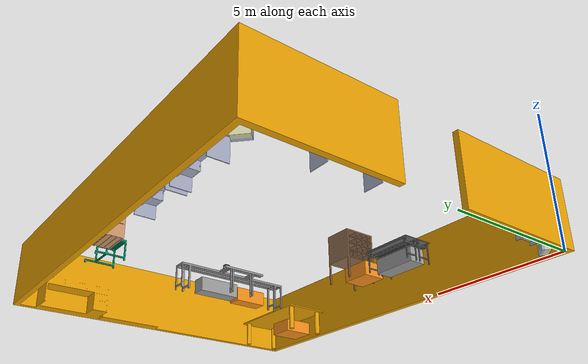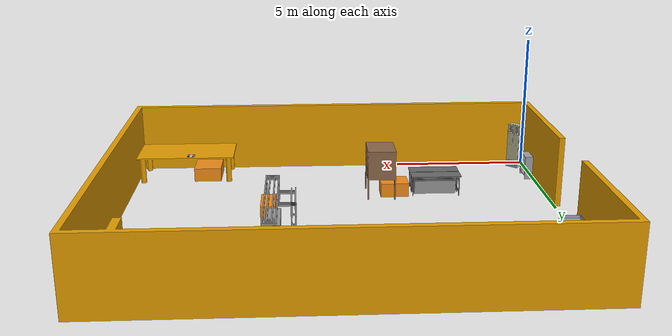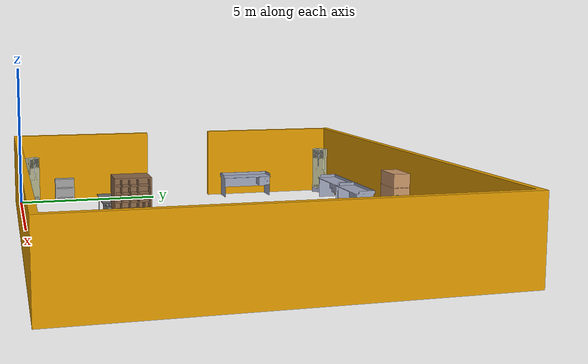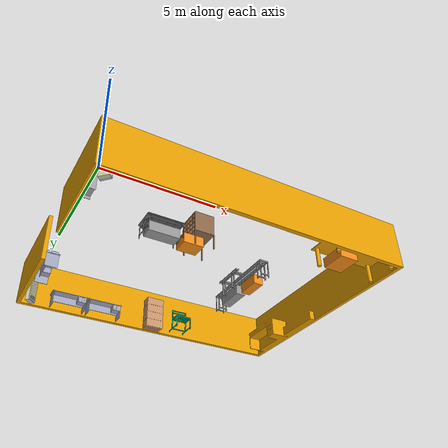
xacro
<?xml version="1.0"?>
<robot xmlns:xacro="http://www.ros.org/wiki/xacro"
       name="room100" >

    <property name="M_PI" value="3.1415926" />
    <xacro:include filename="$(find mm_gazebo)/urdf/materials.xacro" />
    <xacro:include filename="$(find mm_gazebo)/urdf/room100.gazebo.xacro" />
    <xacro:room100_gazebo />
    <!-- wall of room 100 -->
    <link name="wall">
        <inertial>
          <origin xyz="7.5 6 0" />
          <mass value="10000000.0" />
          <inertia  ixx="1000000.0" ixy="0.0"  ixz="0.0"  iyy="1000000.0"  iyz="0.0"  izz="1000000.0" />
        </inertial>
        <visual>
          <origin xyz="0 0 0"/>
          <geometry>
            <mesh filename="package://mm_gazebo/meshes/room100.dae" />
          </geometry>
        </visual>
        <collision>
          <origin xyz="0 0 0"/>
          <geometry>
            <mesh filename="package://mm_gazebo/meshes/room100.dae" />
          </geometry>
        </collision>
    </link>

    <joint name="wall_2_long_desk1" type="fixed">
        <parent link="wall" />
        <child link="long_desk1" />
        <origin xyz="4 3 0" rpy="0 0 0" />
    </joint>
    <!-- long desk 1 -->
    <link name="long_desk1">
        <inertial>
          <origin xyz="0 0 0" />
          <mass value="10000000.0" />
          <inertia  ixx="1000000.0" ixy="0.0"  ixz="0.0"  iyy="1000000.0"  iyz="0.0"  izz="1000000.0" />
        </inertial>
        <visual>
          <origin xyz="0 0 0"/>
          <geometry>
            <mesh filename="package://mm_gazebo/meshes/longdesk.dae" />
          </geometry>
        </visual>
        <collision>
          <origin xyz="0 0 0"/>
          <geometry>
            <mesh filename="package://mm_gazebo/meshes/longdesk.dae" />
          </geometry>
        </collision>
    </link>

    <joint name="wall_2_long_desk2" type="fixed">
        <parent link="wall" />
        <child link="long_desk2" />
        <origin xyz="4 3.58 0" rpy="0 0 0" />
    </joint>
    <!-- long desk 2 -->
    <link name="long_desk2">
        <inertial>
          <origin xyz="0 0 0" />
          <mass value="10000000.0" />
          <inertia  ixx="1000000.0" ixy="0.0"  ixz="0.0"  iyy="1000000.0"  iyz="0.0"  izz="1000000.0" />
        </inertial>
        <visual>
          <origin xyz="0 0 0"/>
          <geometry>
            <mesh filename="package://mm_gazebo/meshes/longdesk.dae" />
          </geometry>
        </visual>
        <collision>
          <origin xyz="0 0 0"/>
          <geometry>
            <mesh filename="package://mm_gazebo/meshes/longdesk.dae" />
          </geometry>
        </collision>
    </link>

    <joint name="wall_2_aircon1" type="fixed">
        <parent link="wall" />
        <child link="aircon1" />
        <origin xyz="0.4 0.4 0" rpy="${M_PI/2} 0 ${-M_PI/4}" />
    </joint>
    <!-- air condition 1 -->
    <link name="aircon1">
        <inertial>
          <origin xyz="0 0 0" />
          <mass value="10000000.0" />
          <inertia  ixx="1000000.0" ixy="0.0"  ixz="0.0"  iyy="1000000.0"  iyz="0.0"  izz="1000000.0" />
        </inertial>
        <visual>
          <origin xyz="0 0 0"/>
          <geometry>
            <mesh filename="package://mm_gazebo/meshes/aircon.dae" />
          </geometry>
        </visual>
        <collision>
          <origin xyz="0 0 0"/>
          <geometry>
            <mesh filename="package://mm_gazebo/meshes/aircon.dae" />
          </geometry>
        </collision>
    </link>

    <joint name="wall_2_aircon2" type="fixed">
        <parent link="wall" />
        <child link="aircon2" />
        <origin xyz="0.4 11.7 0" rpy="${M_PI/2} 0 ${-3*M_PI/4}" />
    </joint>
    <!-- air condition 1 -->
    <link name="aircon2">
        <inertial>
          <origin xyz="0 0 0" />
          <mass value="10000000.0" />
          <inertia  ixx="1000000.0" ixy="0.0"  ixz="0.0"  iyy="1000000.0"  iyz="0.0"  izz="1000000.0" />
        </inertial>
        <visual>
          <origin xyz="0 0 0"/>
          <geometry>
            <mesh filename="package://mm_gazebo/meshes/aircon.dae" />
          </geometry>
        </visual>
        <collision>
          <origin xyz="0 0 0"/>
          <geometry>
            <mesh filename="package://mm_gazebo/meshes/aircon.dae" />
          </geometry>
        </collision>
    </link>

    <joint name="wall_2_workdesk1" type="fixed">
        <parent link="wall" />
        <child link="workdesk1" />
        <origin xyz="2.4 11.6 0" rpy="${M_PI/2} 0 ${M_PI}" />
    </joint>
    <!-- work desk 1 -->
    <link name="workdesk1">
        <inertial>
          <origin xyz="0 0 0" />
          <mass value="10000000.0" />
          <inertia  ixx="1000000.0" ixy="0.0"  ixz="0.0"  iyy="1000000.0"  iyz="0.0"  izz="1000000.0" />
        </inertial>
        <visual>
          <origin xyz="0 0 0"/>
          <geometry>
            <mesh filename="package://mm_gazebo/meshes/workdesk.dae" />
          </geometry>
        </visual>
        <collision>
          <origin xyz="0 0 0"/>
          <geometry>
            <mesh filename="package://mm_gazebo/meshes/workdesk.dae" />
          </geometry>
        </collision>
    </link>
    <joint name="wall_2_workdesk2" type="fixed">
        <parent link="wall" />
        <child link="workdesk2" />
        <origin xyz="4.4 11.6 0" rpy="${M_PI/2} 0 ${M_PI}" />
    </joint>
    <!-- work desk 2 -->
    <link name="workdesk2">
        <inertial>
          <origin xyz="0 0 0" />
          <mass value="10000000.0" />
          <inertia  ixx="1000000.0" ixy="0.0"  ixz="0.0"  iyy="1000000.0"  iyz="0.0"  izz="1000000.0" />
        </inertial>
        <visual>
          <origin xyz="0 0 0"/>
          <geometry>
            <mesh filename="package://mm_gazebo/meshes/workdesk.dae" />
          </geometry>
        </visual>
        <collision>
          <origin xyz="0 0 0"/>
          <geometry>
            <mesh filename="package://mm_gazebo/meshes/workdesk.dae" />
          </geometry>
        </collision>
    </link>

    <joint name="wall_2_workdesk3" type="fixed">
        <parent link="wall" />
        <child link="workdesk3" />
        <origin xyz="0.4 8.6 0" rpy="${M_PI/2} 0 ${-M_PI/2}" />
    </joint>
    <!-- work desk 3 -->
    <link name="workdesk3">
        <inertial>
          <origin xyz="0 0 0" />
          <mass value="10000000.0" />
          <inertia  ixx="1000000.0" ixy="0.0"  ixz="0.0"  iyy="1000000.0"  iyz="0.0"  izz="1000000.0" />
        </inertial>
        <visual>
          <origin xyz="0 0 0"/>
          <geometry>
            <mesh filename="package://mm_gazebo/meshes/workdesk.dae" />
          </geometry>
        </visual>
        <collision>
          <origin xyz="0 0 0"/>
          <geometry>
            <mesh filename="package://mm_gazebo/meshes/workdesk.dae" />
          </geometry>
        </collision>
    </link>

    <joint name="wall_2_storage" type="fixed">
        <parent link="wall" />
        <child link="storage" />
        <origin xyz="6 3.3 0.75" rpy="0 0 ${-M_PI/2}" />
    </joint>
    <!-- storage -->
    <link name="storage">
        <inertial>
          <origin xyz="0 0 0" />
          <mass value="10000000.0" />
          <inertia  ixx="1000000.0" ixy="0.0"  ixz="0.0"  iyy="1000000.0"  iyz="0.0"  izz="1000000.0" />
        </inertial>
        <visual>
          <origin xyz="0 0 0"/>
          <geometry>
            <mesh filename="package://mm_gazebo/meshes/storage.dae" />
          </geometry>
        </visual>
        <collision>
          <origin xyz="0 0 0"/>
          <geometry>
            <mesh filename="package://mm_gazebo/meshes/storage.dae" />
          </geometry>
        </collision>
    </link>

    <joint name="wall_2_elevbox" type="fixed">
        <parent link="wall" />
        <child link="elevbox" />
        <origin xyz="7.5 11.7 0" rpy="0 0 0" />
    </joint>
    <!-- elevator box 1 -->
    <link name="elevbox">
        <inertial>
          <origin xyz="0 0 0" />
          <mass value="10000000.0" />
          <inertia  ixx="1000000.0" ixy="0.0"  ixz="0.0"  iyy="1000000.0"  iyz="0.0"  izz="1000000.0" />
        </inertial>
        <visual>
          <origin xyz="0 0 0"/>
          <geometry>
            <mesh filename="package://mm_gazebo/meshes/elevator_box.dae" scale="0.4 0.4 0.4"/>
          </geometry>
        </visual>
        <collision>
          <origin xyz="0 0 0"/>
          <geometry>
            <mesh filename="package://mm_gazebo/meshes/elevator_box.dae" scale="0.4 0.4 0.4"/>
          </geometry>
        </collision>
    </link>

    <joint name="wall_2_desk" type="fixed">
        <parent link="wall" />
        <child link="desk" />
        <origin xyz="9 11 0" rpy="0 0 ${M_PI}" />
    </joint>
    <!-- elevator box 1 -->
    <link name="desk">
        <inertial>
          <origin xyz="0 0 0" />
          <mass value="10000000.0" />
          <inertia  ixx="1000000.0" ixy="0.0"  ixz="0.0"  iyy="1000000.0"  iyz="0.0"  izz="1000000.0" />
        </inertial>
        <visual>
          <origin xyz="0 0 0"/>
          <geometry>
            <mesh filename="package://mm_gazebo/meshes/desk.stl"/>
          </geometry>
        </visual>
        <collision>
          <origin xyz="0 0 0"/>
          <geometry>
            <mesh filename="package://mm_gazebo/meshes/desk.stl"/>
          </geometry>
        </collision>
    </link>

    <joint name="wall_2_line" type="fixed">
        <parent link="wall" />
        <child link="line" />
        <origin xyz="10 3.6 0" rpy="0 0 ${M_PI/2}" />
    </joint>
    <!-- line -->
    <link name="line">
        <inertial>
          <origin xyz="0 0 0" />
          <mass value="10000000.0" />
          <inertia  ixx="1000000.0" ixy="0.0"  ixz="0.0"  iyy="1000000.0"  iyz="0.0"  izz="1000000.0" />
        </inertial>
        <visual>
          <origin xyz="0 0 0"/>
          <geometry>
            <mesh filename="package://mm_gazebo/meshes/line.dae" />
          </geometry>
        </visual>
        <collision>
          <origin xyz="0 0 0"/>
          <geometry>
            <mesh filename="package://mm_gazebo/meshes/line.dae" />
          </geometry>
        </collision>
    </link>

    <joint name="wall_2_shelf" type="fixed">
        <parent link="wall" />
        <child link="shelf" />
        <origin xyz="0.2 1.6 0" rpy="${M_PI/2} 0 ${M_PI/2}" />
    </joint>
    <!-- line -->
    <link name="shelf">
        <inertial>
          <origin xyz="0 0 0" />
          <mass value="10000000.0" />
          <inertia  ixx="1000000.0" ixy="0.0"  ixz="0.0"  iyy="1000000.0"  iyz="0.0"  izz="1000000.0" />
        </inertial>
        <visual>
          <origin xyz="0 0 0"/>
          <geometry>
            <mesh filename="package://mm_gazebo/meshes/shelf.dae" />
          </geometry>
        </visual>
        <collision>
          <origin xyz="0 0 0"/>
          <geometry>
            <mesh filename="package://mm_gazebo/meshes/shelf.dae" />
          </geometry>
        </collision>
    </link>

    <!-- ############ qr boards ############### -->

    <joint name="wall_2_qr_board1" type="fixed">
        <parent link="wall" />
        <child link="qr_board1" />
        <origin xyz="13 1.54 1" rpy="0 0 0" />
    </joint>

    <!-- qr board on desk 1 -->
    <link name="qr_board1">
        <inertial>
          <origin xyz="0 0 0" />
          <mass value="0.01" />
          <inertia  ixx="0.00001" ixy="0.0"  ixz="0.0"  iyy="0.00001"  iyz="0.0"  izz="0.00001" />
        </inertial>
        <visual>
          <origin xyz="0 0 0"/>
          <geometry>
            <mesh filename="package://mm_gazebo/meshes/qr_board.dae" />
          </geometry>
        </visual>
        <collision>
          <origin xyz="0 0 0"/>
          <geometry>
            <mesh filename="package://mm_gazebo/meshes/qr_board.dae" />
          </geometry>
        </collision>
    </link>

    <joint name="wall_2_qr_board2" type="fixed">
        <parent link="wall" />
        <child link="qr_board2" />
        <origin xyz="14.135 11.265 1" rpy="0 0 ${M_PI/2}" />
    </joint>

    <!-- qr board on desk 2 -->
    <link name="qr_board2">
        <inertial>
          <origin xyz="0 0 0" />
          <mass value="0.01" />
          <inertia  ixx="0.00001" ixy="0.0"  ixz="0.0"  iyy="0.00001"  iyz="0.0"  izz="0.00001" />
        </inertial>
        <visual>
          <origin xyz="0 0 0"/>
          <geometry>
            <mesh filename="package://mm_gazebo/meshes/qr_board.dae" />
          </geometry>
        </visual>
        <collision>
          <origin xyz="0 0 0"/>
          <geometry>
            <mesh filename="package://mm_gazebo/meshes/qr_board.dae" />
          </geometry>
        </collision>
    </link>

    <joint name="wall_2_qr_board3" type="fixed">
        <parent link="wall" />
        <child link="qr_board3" />
        <origin xyz="9.3 10.8 0.7" rpy="0 0 ${M_PI}" />
    </joint>

    <!-- qr board on desk 3 -->
    <link name="qr_board3">
        <inertial>
          <origin xyz="0 0 0" />
          <mass value="0.01" />
          <inertia  ixx="0.00001" ixy="0.0"  ixz="0.0"  iyy="0.00001"  iyz="0.0"  izz="0.00001" />
        </inertial>
        <visual>
          <origin xyz="0 0 0"/>
          <geometry>
            <mesh filename="package://mm_gazebo/meshes/qr_board.dae" />
          </geometry>
        </visual>
        <collision>
          <origin xyz="0 0 0"/>
          <geometry>
            <mesh filename="package://mm_gazebo/meshes/qr_board.dae" />
          </geometry>
        </collision>
    </link>

    <!-- ############ boxes ############### -->
    <joint name="wall_2_box1" type="fixed">
        <parent link="wall" />
        <child link="box1" />
        <origin xyz="12.4 1 0.25" rpy="0 0 0" />
    </joint>

    <link name="box1">
        <inertial>
          <origin xyz="0 0 0" />
          <mass value="100" />
          <inertia  ixx="1" ixy="0.0"  ixz="0.0"  iyy="1"  iyz="0.0"  izz="1" />
        </inertial>
        <visual>
          <origin xyz="0 0 0"/>
          <geometry>
            <box size="1 1.2 0.5" />
          </geometry>
        </visual>
        <collision>
          <origin xyz="0 0 0"/>
          <geometry>
            <box size="1 1.5 0.5"  />
          </geometry>
        </collision>
    </link>

    <joint name="wall_2_box2" type="fixed">
        <parent link="wall" />
        <child link="box2" />
        <origin xyz="10 5 0.25" rpy="0 0 0" />
    </joint>

    <link name="box2">
        <inertial>
          <origin xyz="0 0 0" />
          <mass value="100" />
          <inertia  ixx="1" ixy="0.0"  ixz="0.0"  iyy="1"  iyz="0.0"  izz="1" />
        </inertial>
        <visual>
          <origin xyz="0 0 0"/>
          <geometry>
            <box size="0.5 1.2 0.5" />
          </geometry>
        </visual>
        <collision>
          <origin xyz="0 0 0"/>
          <geometry>
            <box size="0.5 1.5 0.5"  />
          </geometry>
        </collision>
    </link>
    <joint name="wall_2_box3" type="fixed">
        <parent link="wall" />
        <child link="box3" />
        <origin xyz="9.8 6.5 0.25" rpy="0 0 0" />
    </joint>

    <link name="box3">
        <inertial>
          <origin xyz="0 0 0" />
          <mass value="100" />
          <inertia  ixx="1" ixy="0.0"  ixz="0.0"  iyy="1"  iyz="0.0"  izz="1" />
        </inertial>
        <visual>
          <origin xyz="0 0 0"/>
          <geometry>
            <box size="0.5 1.5 0.5" />
          </geometry>
        </visual>
        <collision>
          <origin xyz="0 0 0"/>
          <geometry>
            <box size="0.5 1.5 0.5"  />
          </geometry>
        </collision>
    </link>

    <joint name="wall_2_box4" type="fixed">
        <parent link="wall" />
        <child link="box4" />
        <origin xyz="5.5 3.2 0.25" rpy="0 0 0" />
    </joint>

    <link name="box4">
        <inertial>
          <origin xyz="0 0 0" />
          <mass value="100" />
          <inertia  ixx="1" ixy="0.0"  ixz="0.0"  iyy="1"  iyz="0.0"  izz="1" />
        </inertial>
        <visual>
          <origin xyz="0 0 0"/>
          <geometry>
            <box size="1 0.8 0.5" />
          </geometry>
        </visual>
        <collision>
          <origin xyz="0 0 0"/>
          <geometry>
            <box size="1 0.8 0.5"  />
          </geometry>
        </collision>
    </link>
    <joint name="wall_2_box5" type="fixed">
        <parent link="wall" />
        <child link="box5" />
        <origin xyz="4 3 0.25" rpy="0 0 0" />
    </joint>

    <link name="box5">
        <inertial>
          <origin xyz="0 0 0" />
          <mass value="100" />
          <inertia  ixx="1" ixy="0.0"  ixz="0.0"  iyy="1"  iyz="0.0"  izz="1" />
        </inertial>
        <visual>
          <origin xyz="0 0 0"/>
          <geometry>
            <box size="1.5 0.6 0.5" />
          </geometry>
        </visual>
        <collision>
          <origin xyz="0 0 0"/>
          <geometry>
            <box size="1.5 0.6 0.5"  />
          </geometry>
        </collision>
    </link>
</robot>
